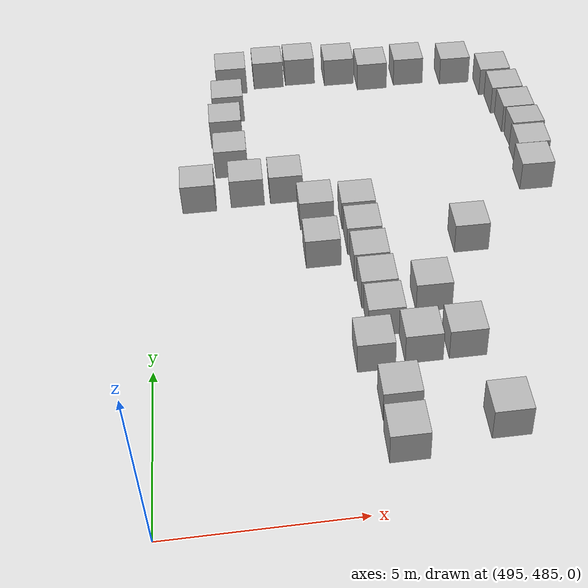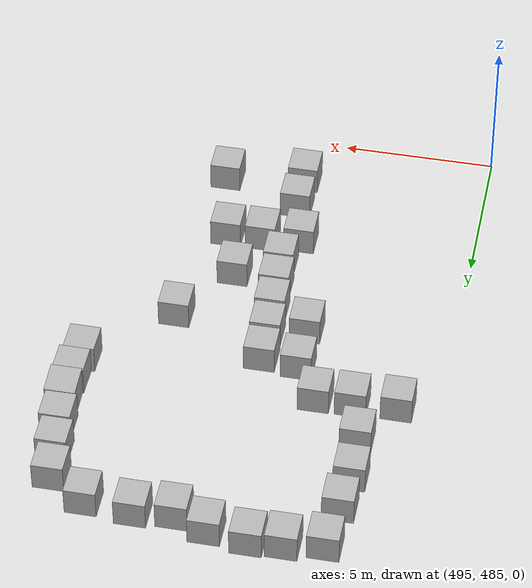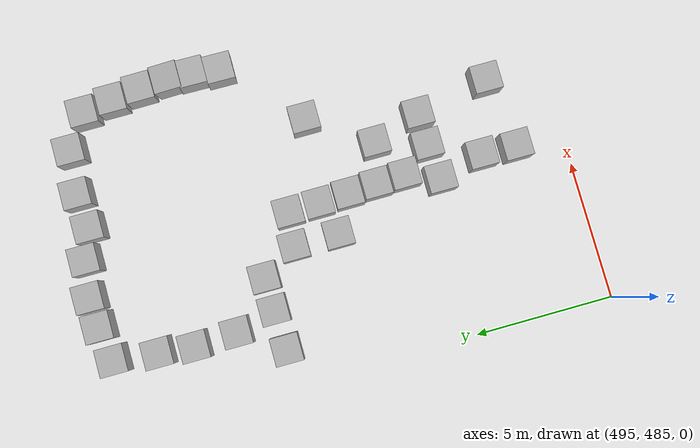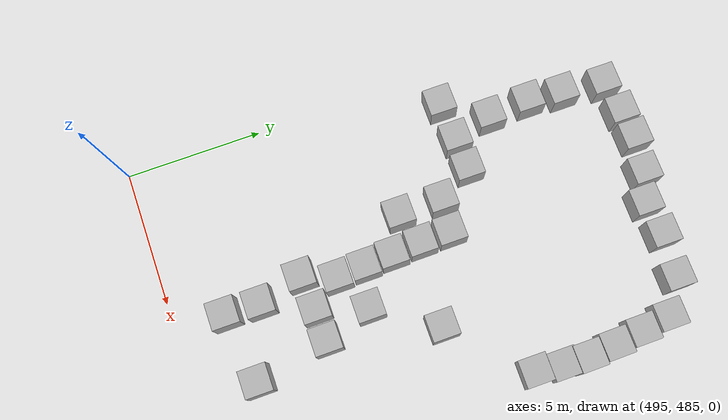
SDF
<sdf version="1.10">
 <world name="warehouse">
  <physics type="ode">
   <max_step_size>0.01</max_step_size>
   <real_time_factor>1</real_time_factor>
   <dart><collision_detector>bullet</collision_detector><solver><solver_type>pgs</solver_type></solver></dart>
   <real_time_update_rate>1000</real_time_update_rate>
   <gravity>0 0 -9.8</gravity>
  </physics>
  <plugin name="gz::sim::systems::Physics" filename="libgz-sim-physics-system.so"/>
  <plugin name="gz::sim::systems::UserCommands" filename="libgz-sim-user-commands-system.so"/>
  <plugin name="gz::sim::systems::SceneBroadcaster" filename="libgz-sim-scene-broadcaster-system.so"/>
  <scene>
   <ambient>1 1 1 1</ambient>
   <background>0.300000012 0.699999988 0.899999976 1</background>
   <shadows>false</shadows>
   <grid>false</grid>
  </scene>
  <spherical_coordinates>
   <surface_model>EARTH_WGS84</surface_model>
   <world_frame_orientation>ENU</world_frame_orientation>
   <latitude_deg>37.544654999999999</latitude_deg>
   <longitude_deg>-77.448238000000003</longitude_deg>
   <elevation>0</elevation>
   <heading_deg>0</heading_deg>
  </spherical_coordinates>
  <gravity>0 0 -9.8000000000000007</gravity>
  <magnetic_field>5.5644999999999998e-06 2.2875799999999999e-05 -4.2388400000000002e-05</magnetic_field>
  <atmosphere type="adiabatic"/>
  <model name="ground_plane">
   <static>true</static>
   <link name="link">
    <collision name="collision">
     <geometry><plane><normal>0 0 1</normal><size>1 1</size></plane></geometry>
    </collision>
    <inertial>
     <mass>1</mass>
     <inertia><ixx>1</ixx><ixy>0</ixy><ixz>0</ixz><iyy>1</iyy><iyz>0</iyz><izz>1</izz></inertia>
    </inertial>
   </link>
  </model>
  <model name="box">
   <pose>500.98572862601924 495.3164478966055 0.49993593536031627 0.00012118502561367348 0.00012080540865206163 0.0010998102885907181</pose>
   <link name="box_link">
    <inertial>
     <inertia><ixx>0.16666</ixx><ixy>0</ixy><ixz>0</ixz><iyy>0.16666</iyy><iyz>0</iyz><izz>0.16666</izz></inertia>
     <mass>1</mass>
    </inertial>
    <collision name="box_collision"><geometry><box><size>1 1 1</size></box></geometry></collision>
    <visual name="box_visual">
     <geometry><box><size>1 1 1</size></box></geometry>
     <material>
      <ambient>0.300000012 0.300000012 0.300000012 1</ambient>
      <diffuse>0.699999988 0.699999988 0.699999988 1</diffuse>
      <specular>1 1 1 1</specular>
     </material>
    </visual>
   </link>
   <static>false</static>
  </model>
  <model name="box_0">
   <pose>501.01257110299093 494.205182128272 0.4994020359489828 0.00030840717912386598 0.00012145498843515796 0.0010921573420521354</pose>
   <link name="box_link">
    <inertial>
     <inertia><ixx>0.16666</ixx><ixy>0</ixy><ixz>0</ixz><iyy>0.16666</iyy><iyz>0</iyz><izz>0.16666</izz></inertia>
     <mass>1</mass>
    </inertial>
    <collision name="box_collision"><geometry><box><size>1 1 1</size></box></geometry></collision>
    <visual name="box_visual">
     <geometry><box><size>1 1 1</size></box></geometry>
     <material>
      <ambient>0.300000012 0.300000012 0.300000012 1</ambient>
      <diffuse>0.699999988 0.699999988 0.699999988 1</diffuse>
      <specular>1 1 1 1</specular>
     </material>
    </visual>
   </link>
   <static>false</static>
  </model>
  <model name="box_1">
   <pose>501.06953555221133 493.1122970868618 0.49937452169260754 0.00030781527880490469 0.00012074370835078274 0.0010780751173888302</pose>
   <link name="box_link">
    <inertial>
     <inertia><ixx>0.16666</ixx><ixy>0</ixy><ixz>0</ixz><iyy>0.16666</iyy><iyz>0</iyz><izz>0.16666</izz></inertia>
     <mass>1</mass>
    </inertial>
    <collision name="box_collision"><geometry><box><size>1 1 1</size></box></geometry></collision>
    <visual name="box_visual">
     <geometry><box><size>1 1 1</size></box></geometry>
     <material>
      <ambient>0.300000012 0.300000012 0.300000012 1</ambient>
      <diffuse>0.699999988 0.699999988 0.699999988 1</diffuse>
      <specular>1 1 1 1</specular>
     </material>
    </visual>
   </link>
   <static>false</static>
  </model>
  <model name="box_2">
   <pose>501.134838297473 492.05464363536777 0.49969001835271443 0.00012015418558022088 0.00012139921838133154 0.00078807373218513525</pose>
   <link name="box_link">
    <inertial>
     <inertia><ixx>0.16666</ixx><ixy>0</ixy><ixz>0</ixz><iyy>0.16666</iyy><iyz>0</iyz><izz>0.16666</izz></inertia>
     <mass>1</mass>
    </inertial>
    <collision name="box_collision"><geometry><box><size>1 1 1</size></box></geometry></collision>
    <visual name="box_visual">
     <geometry><box><size>1 1 1</size></box></geometry>
     <material>
      <ambient>0.300000012 0.300000012 0.300000012 1</ambient>
      <diffuse>0.699999988 0.699999988 0.699999988 1</diffuse>
      <specular>1 1 1 1</specular>
     </material>
    </visual>
   </link>
   <static>false</static>
  </model>
  <model name="box_3">
   <pose>501.18260668831687 490.9929643685278 0.49942306177279794 0.0002885132858737033 0.00012162457444309864 0.00077249011125380437</pose>
   <link name="box_link">
    <inertial>
     <inertia><ixx>0.16666</ixx><ixy>0</ixy><ixz>0</ixz><iyy>0.16666</iyy><iyz>0</iyz><izz>0.16666</izz></inertia>
     <mass>1</mass>
    </inertial>
    <collision name="box_collision"><geometry><box><size>1 1 1</size></box></geometry></collision>
    <visual name="box_visual">
     <geometry><box><size>1 1 1</size></box></geometry>
     <material>
      <ambient>0.300000012 0.300000012 0.300000012 1</ambient>
      <diffuse>0.699999988 0.699999988 0.699999988 1</diffuse>
      <specular>1 1 1 1</specular>
     </material>
    </visual>
   </link>
   <static>false</static>
  </model>
  <model name="box_4">
   <pose>504.06754590695573 493.8964863008474 0.49988359470785104 0.00012057772496999939 0.0001208212808407302 0.00075105885689759409</pose>
   <link name="box_link">
    <inertial>
     <inertia><ixx>0.16666</ixx><ixy>0</ixy><ixz>0</ixz><iyy>0.16666</iyy><iyz>0</iyz><izz>0.16666</izz></inertia>
     <mass>1</mass>
    </inertial>
    <collision name="box_collision"><geometry><box><size>1 1 1</size></box></geometry></collision>
    <visual name="box_visual">
     <geometry><box><size>1 1 1</size></box></geometry>
     <material>
      <ambient>0.300000012 0.300000012 0.300000012 1</ambient>
      <diffuse>0.699999988 0.699999988 0.699999988 1</diffuse>
      <specular>1 1 1 1</specular>
     </material>
    </visual>
   </link>
   <static>false</static>
  </model>
  <model name="box_5">
   <pose>502.58246785295046 491.71349308008575 0.49973693595298291 0.00012123369460311095 0.00012062727561772703 0.00073277951338803101</pose>
   <link name="box_link">
    <inertial>
     <inertia><ixx>0.16666</ixx><ixy>0</ixy><ixz>0</ixz><iyy>0.16666</iyy><iyz>0</iyz><izz>0.16666</izz></inertia>
     <mass>1</mass>
    </inertial>
    <collision name="box_collision"><geometry><box><size>1 1 1</size></box></geometry></collision>
    <visual name="box_visual">
     <geometry><box><size>1 1 1</size></box></geometry>
     <material>
      <ambient>0.300000012 0.300000012 0.300000012 1</ambient>
      <diffuse>0.699999988 0.699999988 0.699999988 1</diffuse>
      <specular>1 1 1 1</specular>
     </material>
    </visual>
   </link>
   <static>false</static>
  </model>
  <model name="box_6">
   <pose>499.7855419202003 493.8187290297297 0.49989500430960404 0.00012149643878143602 0.00012166562937633204 0.00070886644108605857</pose>
   <link name="box_link">
    <inertial>
     <inertia><ixx>0.16666</ixx><ixy>0</ixy><ixz>0</ixz><iyy>0.16666</iyy><iyz>0</iyz><izz>0.16666</izz></inertia>
     <mass>1</mass>
    </inertial>
    <collision name="box_collision"><geometry><box><size>1 1 1</size></box></geometry></collision>
    <visual name="box_visual">
     <geometry><box><size>1 1 1</size></box></geometry>
     <material>
      <ambient>0.300000012 0.300000012 0.300000012 1</ambient>
      <diffuse>0.699999988 0.699999988 0.699999988 1</diffuse>
      <specular>1 1 1 1</specular>
     </material>
    </visual>
   </link>
   <static>false</static>
  </model>
  <model name="box_7">
   <pose>500.7218999856183 489.80355429874027 0.49970082856806108 0.00012134523751423125 -0.00043790901751783874 0.00061506157445050493</pose>
   <link name="box_link">
    <inertial>
     <inertia><ixx>0.16666</ixx><ixy>0</ixy><ixz>0</ixz><iyy>0.16666</iyy><iyz>0</iyz><izz>0.16666</izz></inertia>
     <mass>1</mass>
    </inertial>
    <collision name="box_collision"><geometry><box><size>1 1 1</size></box></geometry></collision>
    <visual name="box_visual">
     <geometry><box><size>1 1 1</size></box></geometry>
     <material>
      <ambient>0.300000012 0.300000012 0.300000012 1</ambient>
      <diffuse>0.699999988 0.699999988 0.699999988 1</diffuse>
      <specular>1 1 1 1</specular>
     </material>
    </visual>
   </link>
   <static>false</static>
  </model>
  <model name="box_8">
   <pose>501.1524419135611 488.16676088908656 0.50011587569151317 1.3823528723956472e-06 -0.00011204068262081457 0.00021005143200812114</pose>
   <link name="box_link">
    <inertial>
     <inertia><ixx>0.16666</ixx><ixy>0</ixy><ixz>0</ixz><iyy>0.16666</iyy><iyz>0</iyz><izz>0.16666</izz></inertia>
     <mass>1</mass>
    </inertial>
    <collision name="box_collision"><geometry><box><size>1 1 1</size></box></geometry></collision>
    <visual name="box_visual">
     <geometry><box><size>1 1 1</size></box></geometry>
     <material>
      <ambient>0.300000012 0.300000012 0.300000012 1</ambient>
      <diffuse>0.699999988 0.699999988 0.699999988 1</diffuse>
      <specular>1 1 1 1</specular>
     </material>
    </visual>
   </link>
   <static>false</static>
  </model>
  <model name="box_9">
   <pose>501.1212900855569 486.89277640030025 0.49936493625115297 0.00030494517542803759 0.00012129915295021082 0.00063653258623712534</pose>
   <link name="box_link">
    <inertial>
     <inertia><ixx>0.16666</ixx><ixy>0</ixy><ixz>0</ixz><iyy>0.16666</iyy><iyz>0</iyz><izz>0.16666</izz></inertia>
     <mass>1</mass>
    </inertial>
    <collision name="box_collision"><geometry><box><size>1 1 1</size></box></geometry></collision>
    <visual name="box_visual">
     <geometry><box><size>1 1 1</size></box></geometry>
     <material>
      <ambient>0.300000012 0.300000012 0.300000012 1</ambient>
      <diffuse>0.699999988 0.699999988 0.699999988 1</diffuse>
      <specular>1 1 1 1</specular>
     </material>
    </visual>
   </link>
   <static>false</static>
  </model>
  <model name="box_10">
   <pose>503.7101763897339 487.27272986456353 0.49963667364381309 0.00018730107813216351 0.00012189676864790819 0.00061235023679262338</pose>
   <link name="box_link">
    <inertial>
     <inertia><ixx>0.16666</ixx><ixy>0</ixy><ixz>0</ixz><iyy>0.16666</iyy><iyz>0</iyz><izz>0.16666</izz></inertia>
     <mass>1</mass>
    </inertial>
    <collision name="box_collision"><geometry><box><size>1 1 1</size></box></geometry></collision>
    <visual name="box_visual">
     <geometry><box><size>1 1 1</size></box></geometry>
     <material>
      <ambient>0.300000012 0.300000012 0.300000012 1</ambient>
      <diffuse>0.699999988 0.699999988 0.699999988 1</diffuse>
      <specular>1 1 1 1</specular>
     </material>
    </visual>
   </link>
   <static>false</static>
  </model>
  <model name="box_11">
   <pose>503.16039964026373 489.94857903903244 0.49954842008865458 0.00020874290561834362 0.00011992590473998531 0.00046702814717248229</pose>
   <link name="box_link">
    <inertial>
     <inertia><ixx>0.16666</ixx><ixy>0</ixy><ixz>0</ixz><iyy>0.16666</iyy><iyz>0</iyz><izz>0.16666</izz></inertia>
     <mass>1</mass>
    </inertial>
    <collision name="box_collision"><geometry><box><size>1 1 1</size></box></geometry></collision>
    <visual name="box_visual">
     <geometry><box><size>1 1 1</size></box></geometry>
     <material>
      <ambient>0.300000012 0.300000012 0.300000012 1</ambient>
      <diffuse>0.699999988 0.699999988 0.699999988 1</diffuse>
      <specular>1 1 1 1</specular>
     </material>
    </visual>
   </link>
   <static>false</static>
  </model>
  <model name="box_12">
   <pose>501.9951196363403 489.93240218562846 0.49982514499520425 0.0001215549925320981 0.00012204715227089803 0.0003724660318601146</pose>
   <link name="box_link">
    <inertial>
     <inertia><ixx>0.16666</ixx><ixy>0</ixy><ixz>0</ixz><iyy>0.16666</iyy><iyz>0</iyz><izz>0.16666</izz></inertia>
     <mass>1</mass>
    </inertial>
    <collision name="box_collision"><geometry><box><size>1 1 1</size></box></geometry></collision>
    <visual name="box_visual">
     <geometry><box><size>1 1 1</size></box></geometry>
     <material>
      <ambient>0.300000012 0.300000012 0.300000012 1</ambient>
      <diffuse>0.699999988 0.699999988 0.699999988 1</diffuse>
      <specular>1 1 1 1</specular>
     </material>
    </visual>
   </link>
   <static>false</static>
  </model>
  <model name="box_13">
   <pose>506.5984916207117 496.36238309275916 0.51116705499704018 0.024404777991448492 -0.0010023908191602142 -0.0055906834546988323</pose>
   <link name="box_link">
    <inertial>
     <inertia><ixx>0.16666</ixx><ixy>0</ixy><ixz>0</ixz><iyy>0.16666</iyy><iyz>0</iyz><izz>0.16666</izz></inertia>
     <mass>1</mass>
    </inertial>
    <collision name="box_collision"><geometry><box><size>1 1 1</size></box></geometry></collision>
    <visual name="box_visual">
     <geometry><box><size>1 1 1</size></box></geometry>
     <material>
      <ambient>0.300000012 0.300000012 0.300000012 1</ambient>
      <diffuse>0.699999988 0.699999988 0.699999988 1</diffuse>
      <specular>1 1 1 1</specular>
     </material>
    </visual>
   </link>
   <static>false</static>
  </model>
  <model name="box_14">
   <pose>506.7148375430373 497.3613868113496 0.53780804283535311 0.0244087604726425 -0.0012363810371310523 -0.0055635350985232717</pose>
   <link name="box_link">
    <inertial>
     <inertia><ixx>0.16666</ixx><ixy>0</ixy><ixz>0</ixz><iyy>0.16666</iyy><iyz>0</iyz><izz>0.16666</izz></inertia>
     <mass>1</mass>
    </inertial>
    <collision name="box_collision"><geometry><box><size>1 1 1</size></box></geometry></collision>
    <visual name="box_visual">
     <geometry><box><size>1 1 1</size></box></geometry>
     <material>
      <ambient>0.300000012 0.300000012 0.300000012 1</ambient>
      <diffuse>0.699999988 0.699999988 0.699999988 1</diffuse>
      <specular>1 1 1 1</specular>
     </material>
    </visual>
   </link>
   <static>false</static>
  </model>
  <model name="box_15">
   <pose>506.75498415935533 498.22995342957125 0.54659630631038858 -0.099099217879985907 0.0005348576555449211 -2.7225867727912555e-05</pose>
   <link name="box_link">
    <inertial>
     <inertia><ixx>0.16666</ixx><ixy>0</ixy><ixz>0</ixz><iyy>0.16666</iyy><iyz>0</iyz><izz>0.16666</izz></inertia>
     <mass>1</mass>
    </inertial>
    <collision name="box_collision"><geometry><box><size>1 1 1</size></box></geometry></collision>
    <visual name="box_visual">
     <geometry><box><size>1 1 1</size></box></geometry>
     <material>
      <ambient>0.300000012 0.300000012 0.300000012 1</ambient>
      <diffuse>0.699999988 0.699999988 0.699999988 1</diffuse>
      <specular>1 1 1 1</specular>
     </material>
    </visual>
   </link>
   <static>false</static>
  </model>
  <model name="box_16">
   <pose>506.68102831037004 499.2957775161997 0.50011997785094364 -1.7498776598281956e-05 -3.0572627906303109e-05 0.0077656097114001078</pose>
   <link name="box_link">
    <inertial>
     <inertia><ixx>0.16666</ixx><ixy>0</ixy><ixz>0</ixz><iyy>0.16666</iyy><iyz>0</iyz><izz>0.16666</izz></inertia>
     <mass>1</mass>
    </inertial>
    <collision name="box_collision"><geometry><box><size>1 1 1</size></box></geometry></collision>
    <visual name="box_visual">
     <geometry><box><size>1 1 1</size></box></geometry>
     <material>
      <ambient>0.300000012 0.300000012 0.300000012 1</ambient>
      <diffuse>0.699999988 0.699999988 0.699999988 1</diffuse>
      <specular>1 1 1 1</specular>
     </material>
    </visual>
   </link>
   <static>false</static>
  </model>
  <model name="box_17">
   <pose>506.5503712809014 500.3436459194549 0.49986240414260658 0.00012059813396817264 0.00012028366526592523 0.0002087879392765232</pose>
   <link name="box_link">
    <inertial>
     <inertia><ixx>0.16666</ixx><ixy>0</ixy><ixz>0</ixz><iyy>0.16666</iyy><iyz>0</iyz><izz>0.16666</izz></inertia>
     <mass>1</mass>
    </inertial>
    <collision name="box_collision"><geometry><box><size>1 1 1</size></box></geometry></collision>
    <visual name="box_visual">
     <geometry><box><size>1 1 1</size></box></geometry>
     <material>
      <ambient>0.300000012 0.300000012 0.300000012 1</ambient>
      <diffuse>0.699999988 0.699999988 0.699999988 1</diffuse>
      <specular>1 1 1 1</specular>
     </material>
    </visual>
   </link>
   <static>false</static>
  </model>
  <model name="box_18">
   <pose>506.38355216551713 501.42486581343525 0.49982608546721308 0.00011982839028544455 0.00012019452155718147 0.00019989482560744723</pose>
   <link name="box_link">
    <inertial>
     <inertia><ixx>0.16666</ixx><ixy>0</ixy><ixz>0</ixz><iyy>0.16666</iyy><iyz>0</iyz><izz>0.16666</izz></inertia>
     <mass>1</mass>
    </inertial>
    <collision name="box_collision"><geometry><box><size>1 1 1</size></box></geometry></collision>
    <visual name="box_visual">
     <geometry><box><size>1 1 1</size></box></geometry>
     <material>
      <ambient>0.300000012 0.300000012 0.300000012 1</ambient>
      <diffuse>0.699999988 0.699999988 0.699999988 1</diffuse>
      <specular>1 1 1 1</specular>
     </material>
    </visual>
   </link>
   <static>false</static>
  </model>
  <model name="box_19">
   <pose>505.1768067115905 502.2237743835516 0.49994038888953996 0.00012085146482156061 0.00012106888239430065 0.00019223786283917285</pose>
   <link name="box_link">
    <inertial>
     <inertia><ixx>0.16666</ixx><ixy>0</ixy><ixz>0</ixz><iyy>0.16666</iyy><iyz>0</iyz><izz>0.16666</izz></inertia>
     <mass>1</mass>
    </inertial>
    <collision name="box_collision"><geometry><box><size>1 1 1</size></box></geometry></collision>
    <visual name="box_visual">
     <geometry><box><size>1 1 1</size></box></geometry>
     <material>
      <ambient>0.300000012 0.300000012 0.300000012 1</ambient>
      <diffuse>0.699999988 0.699999988 0.699999988 1</diffuse>
      <specular>1 1 1 1</specular>
     </material>
    </visual>
   </link>
   <static>false</static>
  </model>
  <model name="box_20">
   <pose>503.6030769442819 502.3788528021606 0.49958492156915585 -0.00059622997371835853 0.00012067144578930767 0.00018347704243694651</pose>
   <link name="box_link">
    <inertial>
     <inertia><ixx>0.16666</ixx><ixy>0</ixy><ixz>0</ixz><iyy>0.16666</iyy><iyz>0</iyz><izz>0.16666</izz></inertia>
     <mass>1</mass>
    </inertial>
    <collision name="box_collision"><geometry><box><size>1 1 1</size></box></geometry></collision>
    <visual name="box_visual">
     <geometry><box><size>1 1 1</size></box></geometry>
     <material>
      <ambient>0.300000012 0.300000012 0.300000012 1</ambient>
      <diffuse>0.699999988 0.699999988 0.699999988 1</diffuse>
      <specular>1 1 1 1</specular>
     </material>
    </visual>
   </link>
   <static>false</static>
  </model>
  <model name="box_21">
   <pose>502.34320226283705 502.257729569584 0.49964297830283222 0.00016598283960227907 0.00012151341663523961 0.00017206566523792253</pose>
   <link name="box_link">
    <inertial>
     <inertia><ixx>0.16666</ixx><ixy>0</ixy><ixz>0</ixz><iyy>0.16666</iyy><iyz>0</iyz><izz>0.16666</izz></inertia>
     <mass>1</mass>
    </inertial>
    <collision name="box_collision"><geometry><box><size>1 1 1</size></box></geometry></collision>
    <visual name="box_visual">
     <geometry><box><size>1 1 1</size></box></geometry>
     <material>
      <ambient>0.300000012 0.300000012 0.300000012 1</ambient>
      <diffuse>0.699999988 0.699999988 0.699999988 1</diffuse>
      <specular>1 1 1 1</specular>
     </material>
    </visual>
   </link>
   <static>false</static>
  </model>
  <model name="box_22">
   <pose>496.3594425350942 496.6355744255752 0.49971830493311448 0.00012278008097855661 0.00012088415247794069 0.00015999612295158213</pose>
   <link name="box_link">
    <inertial>
     <inertia><ixx>0.16666</ixx><ixy>0</ixy><ixz>0</ixz><iyy>0.16666</iyy><iyz>0</iyz><izz>0.16666</izz></inertia>
     <mass>1</mass>
    </inertial>
    <collision name="box_collision"><geometry><box><size>1 1 1</size></box></geometry></collision>
    <visual name="box_visual">
     <geometry><box><size>1 1 1</size></box></geometry>
     <material>
      <ambient>0.300000012 0.300000012 0.300000012 1</ambient>
      <diffuse>0.699999988 0.699999988 0.699999988 1</diffuse>
      <specular>1 1 1 1</specular>
     </material>
    </visual>
   </link>
   <static>false</static>
  </model>
  <model name="box_23">
   <pose>497.8018639719679 496.7150954164954 0.49958455756547832 0.00020297765364994783 0.00012064460585935272 0.00015082153343965623</pose>
   <link name="box_link">
    <inertial>
     <inertia><ixx>0.16666</ixx><ixy>0</ixy><ixz>0</ixz><iyy>0.16666</iyy><iyz>0</iyz><izz>0.16666</izz></inertia>
     <mass>1</mass>
    </inertial>
    <collision name="box_collision"><geometry><box><size>1 1 1</size></box></geometry></collision>
    <visual name="box_visual">
     <geometry><box><size>1 1 1</size></box></geometry>
     <material>
      <ambient>0.300000012 0.300000012 0.300000012 1</ambient>
      <diffuse>0.699999988 0.699999988 0.699999988 1</diffuse>
      <specular>1 1 1 1</specular>
     </material>
    </visual>
   </link>
   <static>false</static>
  </model>
  <model name="box_24">
   <pose>498.98281327802135 496.7383434371792 0.49961802598943744 -0.00055117253713070163 0.00012195578870364346 0.00013292192392093708</pose>
   <link name="box_link">
    <inertial>
     <inertia><ixx>0.16666</ixx><ixy>0</ixy><ixz>0</ixz><iyy>0.16666</iyy><iyz>0</iyz><izz>0.16666</izz></inertia>
     <mass>1</mass>
    </inertial>
    <collision name="box_collision"><geometry><box><size>1 1 1</size></box></geometry></collision>
    <visual name="box_visual">
     <geometry><box><size>1 1 1</size></box></geometry>
     <material>
      <ambient>0.300000012 0.300000012 0.300000012 1</ambient>
      <diffuse>0.699999988 0.699999988 0.699999988 1</diffuse>
      <specular>1 1 1 1</specular>
     </material>
    </visual>
   </link>
   <static>false</static>
  </model>
  <model name="box_25">
   <pose>499.77017944805687 495.44770131443585 0.49963816966098351 0.00018029998038942763 0.00012053844264755129 0.00012268994058503712</pose>
   <link name="box_link">
    <inertial>
     <inertia><ixx>0.16666</ixx><ixy>0</ixy><ixz>0</ixz><iyy>0.16666</iyy><iyz>0</iyz><izz>0.16666</izz></inertia>
     <mass>1</mass>
    </inertial>
    <collision name="box_collision"><geometry><box><size>1 1 1</size></box></geometry></collision>
    <visual name="box_visual">
     <geometry><box><size>1 1 1</size></box></geometry>
     <material>
      <ambient>0.300000012 0.300000012 0.300000012 1</ambient>
      <diffuse>0.699999988 0.699999988 0.699999988 1</diffuse>
      <specular>1 1 1 1</specular>
     </material>
    </visual>
   </link>
   <static>false</static>
  </model>
  <model name="box_26">
   <pose>501.2597107258881 502.66678901943743 0.49964332382605869 -0.00051624944676878341 0.00012071654899891361 0.00011174576326562609</pose>
   <link name="box_link">
    <inertial>
     <inertia><ixx>0.16666</ixx><ixy>0</ixy><ixz>0</ixz><iyy>0.16666</iyy><iyz>0</iyz><izz>0.16666</izz></inertia>
     <mass>1</mass>
    </inertial>
    <collision name="box_collision"><geometry><box><size>1 1 1</size></box></geometry></collision>
    <visual name="box_visual">
     <geometry><box><size>1 1 1</size></box></geometry>
     <material>
      <ambient>0.300000012 0.300000012 0.300000012 1</ambient>
      <diffuse>0.699999988 0.699999988 0.699999988 1</diffuse>
      <specular>1 1 1 1</specular>
     </material>
    </visual>
   </link>
   <static>false</static>
  </model>
  <model name="box_27">
   <pose>499.937952128866 502.854607675906 0.49941348737373714 0.00029824633435012458 0.00012090486261462949 0.00010563148498999674</pose>
   <link name="box_link">
    <inertial>
     <inertia><ixx>0.16666</ixx><ixy>0</ixy><ixz>0</ixz><iyy>0.16666</iyy><iyz>0</iyz><izz>0.16666</izz></inertia>
     <mass>1</mass>
    </inertial>
    <collision name="box_collision"><geometry><box><size>1 1 1</size></box></geometry></collision>
    <visual name="box_visual">
     <geometry><box><size>1 1 1</size></box></geometry>
     <material>
      <ambient>0.300000012 0.300000012 0.300000012 1</ambient>
      <diffuse>0.699999988 0.699999988 0.699999988 1</diffuse>
      <specular>1 1 1 1</specular>
     </material>
    </visual>
   </link>
   <static>false</static>
  </model>
  <model name="box_28">
   <pose>498.8629713931163 502.79073447240626 0.49971223262654074 0.00012152004678503033 0.00012025768518012571 9.8112184432840323e-05</pose>
   <link name="box_link">
    <inertial>
     <inertia><ixx>0.16666</ixx><ixy>0</ixy><ixz>0</ixz><iyy>0.16666</iyy><iyz>0</iyz><izz>0.16666</izz></inertia>
     <mass>1</mass>
    </inertial>
    <collision name="box_collision"><geometry><box><size>1 1 1</size></box></geometry></collision>
    <visual name="box_visual">
     <geometry><box><size>1 1 1</size></box></geometry>
     <material>
      <ambient>0.300000012 0.300000012 0.300000012 1</ambient>
      <diffuse>0.699999988 0.699999988 0.699999988 1</diffuse>
      <specular>1 1 1 1</specular>
     </material>
    </visual>
   </link>
   <static>false</static>
  </model>
  <model name="box_29">
   <pose>497.6185455874898 502.5930905714789 0.499871235681283 0.00012147393729331583 0.00012090133869110817 9.1107489202561537e-05</pose>
   <link name="box_link">
    <inertial>
     <inertia><ixx>0.16666</ixx><ixy>0</ixy><ixz>0</ixz><iyy>0.16666</iyy><iyz>0</iyz><izz>0.16666</izz></inertia>
     <mass>1</mass>
    </inertial>
    <collision name="box_collision"><geometry><box><size>1 1 1</size></box></geometry></collision>
    <visual name="box_visual">
     <geometry><box><size>1 1 1</size></box></geometry>
     <material>
      <ambient>0.300000012 0.300000012 0.300000012 1</ambient>
      <diffuse>0.699999988 0.699999988 0.699999988 1</diffuse>
      <specular>1 1 1 1</specular>
     </material>
    </visual>
   </link>
   <static>false</static>
  </model>
  <model name="box_30">
   <pose>497.4427373433183 501.0090110520519 0.49988158295833501 0.00012167714240380702 0.00011993585845401069 8.2970664942817103e-05</pose>
   <link name="box_link">
    <inertial>
     <inertia><ixx>0.16666</ixx><ixy>0</ixy><ixz>0</ixz><iyy>0.16666</iyy><iyz>0</iyz><izz>0.16666</izz></inertia>
     <mass>1</mass>
    </inertial>
    <collision name="box_collision"><geometry><box><size>1 1 1</size></box></geometry></collision>
    <visual name="box_visual">
     <geometry><box><size>1 1 1</size></box></geometry>
     <material>
      <ambient>0.300000012 0.300000012 0.300000012 1</ambient>
      <diffuse>0.699999988 0.699999988 0.699999988 1</diffuse>
      <specular>1 1 1 1</specular>
     </material>
    </visual>
   </link>
   <static>false</static>
  </model>
  <model name="box_31">
   <pose>497.3198426155187 499.7187914099395 0.49945762147686207 0.00024487767699518648 0.0001200095713592418 7.6797477001808051e-05</pose>
   <link name="box_link">
    <inertial>
     <inertia><ixx>0.16666</ixx><ixy>0</ixy><ixz>0</ixz><iyy>0.16666</iyy><iyz>0</iyz><izz>0.16666</izz></inertia>
     <mass>1</mass>
    </inertial>
    <collision name="box_collision"><geometry><box><size>1 1 1</size></box></geometry></collision>
    <visual name="box_visual">
     <geometry><box><size>1 1 1</size></box></geometry>
     <material>
      <ambient>0.300000012 0.300000012 0.300000012 1</ambient>
      <diffuse>0.699999988 0.699999988 0.699999988 1</diffuse>
      <specular>1 1 1 1</specular>
     </material>
    </visual>
   </link>
   <static>false</static>
  </model>
  <model name="box_32">
   <pose>497.39893532872924 498.1734196745391 0.49959228392676536 0.00020087077805414893 0.00012065045759396334 6.8817417465207831e-05</pose>
   <link name="box_link">
    <inertial>
     <inertia><ixx>0.16666</ixx><ixy>0</ixy><ixz>0</ixz><iyy>0.16666</iyy><iyz>0</iyz><izz>0.16666</izz></inertia>
     <mass>1</mass>
    </inertial>
    <collision name="box_collision"><geometry><box><size>1 1 1</size></box></geometry></collision>
    <visual name="box_visual">
     <geometry><box><size>1 1 1</size></box></geometry>
     <material>
      <ambient>0.300000012 0.300000012 0.300000012 1</ambient>
      <diffuse>0.699999988 0.699999988 0.699999988 1</diffuse>
      <specular>1 1 1 1</specular>
     </material>
    </visual>
   </link>
   <static>false</static>
  </model>
 </world>
</sdf>
